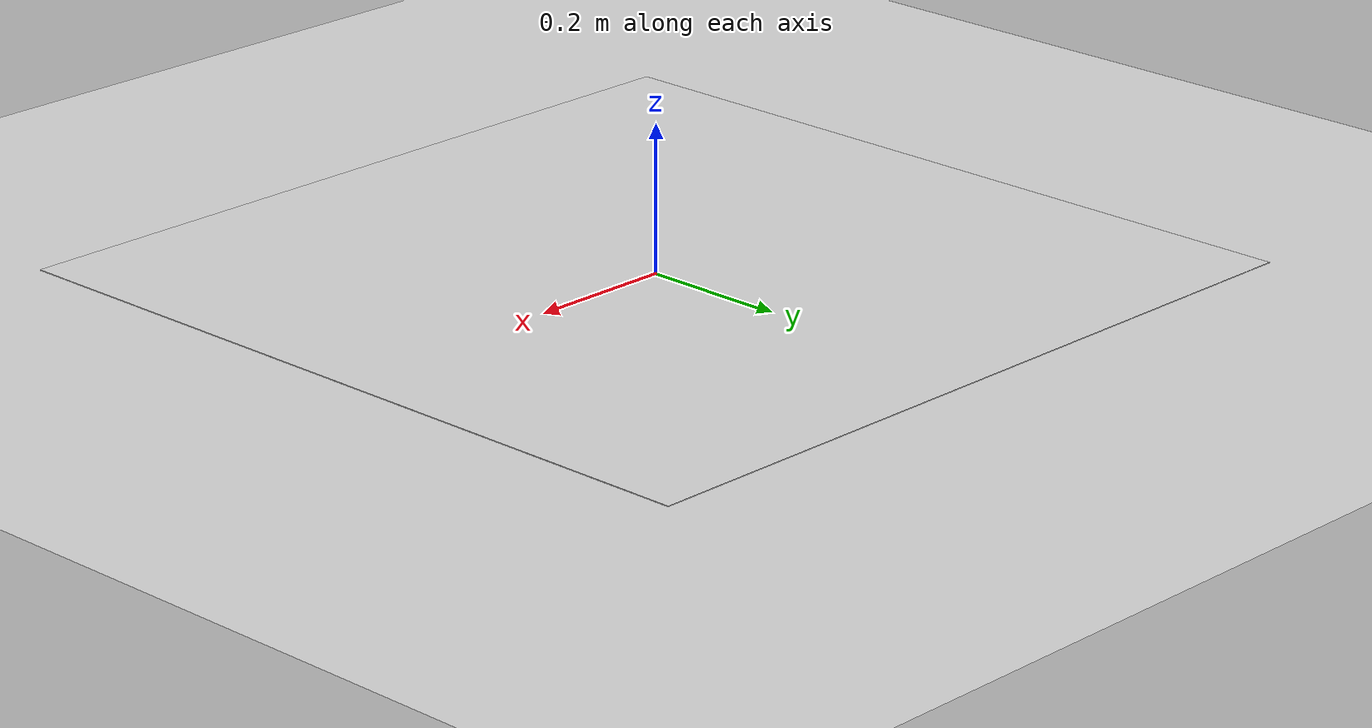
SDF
<?xml version="1.0" ?>
<sdf version="1.4">
  <world name="default">
    <include>
      <uri>model://ground_plane</uri>
    </include>
    <include>
      <uri>model://sun</uri>
    </include>

    <!-- Only one ROS interface plugin is required per world, as any other plugin can connect a Gazebo
         topic to a ROS topic (or vise versa). -->
    <plugin name="ros_interface_plugin" filename="librotors_gazebo_ros_interface_plugin.so"/>

    <spherical_coordinates>
      <surface_model>EARTH_WGS84</surface_model>
      <latitude_deg>47.3667</latitude_deg>
      <longitude_deg>8.5500</longitude_deg>
      <elevation>500.0</elevation>
      <heading_deg>0</heading_deg>
    </spherical_coordinates>
    <physics type='ode'>
      <ode>
        <solver>
          <type>quick</type>
          <iters>1000</iters>
          <sor>1.3</sor>
        </solver>
        <constraints>
          <cfm>0</cfm>
          <erp>0.2</erp>
          <contact_max_correcting_vel>100</contact_max_correcting_vel>
          <contact_surface_layer>0.001</contact_surface_layer>
        </constraints>
      </ode>
      <max_step_size>0.01</max_step_size>
      <real_time_factor>1</real_time_factor>
      <real_time_update_rate>100</real_time_update_rate>
      <gravity>0 0 -9.8</gravity>
    </physics>
    <!-- Wireless basestation (mat) model -->
    <model name="basestation">
      <static>true</static>
      <link name="mat_link">
        <pose>0 0 0.01 0 0 0</pose>
        <visual name="mat">
          <geometry>
            <plane>
              <size>1.1 1.1</size>
              <normal>0 0 1</normal>
            </plane>
          </geometry>
          <material>
            <ambient>0.8 0.8 0.8 1</ambient>
            <diffuse>0.8 0.8 0.8 1</diffuse>
            <specular>0 0 0 1</specular>
          </material>
        </visual>
      </link>

    <!-- Antenna 0 -->
      <link name="ant0_link">
        <visual name="ant_vis">
          <pose>0.5 0.5 0.01 0 0 0</pose>
          <geometry>
            <cylinder>
              <radius>.02</radius>
              <length>.001</length>
            </cylinder>
          </geometry>
          <material>
            <ambient>1 0.1 0.1 1</ambient>
            <diffuse>1 0.1 0.1 1</diffuse>
            <specular>0 0 0 1</specular>
          </material>
        </visual>
        <sensor name="wirelessTransmitter0" type="wireless_transmitter">
          <pose>0.5 0.5 0.01 0 0 0</pose>
          <always_on>1</always_on>
          <update_rate>20</update_rate>
          <visualize>true</visualize>
          <transceiver>
            <essid>TX0</essid>
            <frequency>868.7</frequency>
            <power>14.5</power>
            <gain>5</gain>
          </transceiver>
        </sensor>
      </link>
      <!-- Antenna 1 -->
      <link name="ant1_link">
        <visual name="ant_vis">
          <pose>0.5 -0.5 0.01 0 0 0</pose>
          <geometry>
            <cylinder>
              <radius>.02</radius>
              <length>.001</length>
            </cylinder>
          </geometry>
          <material>
            <ambient>0.1 1 0.1 1</ambient>
            <diffuse>0.1 1 0.1 1</diffuse>
            <specular>0 0 0 1</specular>
          </material>
        </visual>
        <sensor name="wirelessTransmitter1" type="wireless_transmitter">
          <pose>0.5 -0.5 0.01 0 0 0</pose>
          <always_on>1</always_on>
          <update_rate>20</update_rate>
          <visualize>true</visualize>
          <transceiver>
            <essid>TX1</essid>
            <frequency>868.9</frequency>
            <power>14.5</power>
            <gain>5</gain>
          </transceiver>
        </sensor>
      </link>

      <!-- Antenna 2 -->
      <link name="ant2_link">
        <visual name="ant_vis">
          <pose>-0.5 -0.5 0.01 0 0 0</pose>
          <geometry>
            <cylinder>
              <radius>.02</radius>
              <length>.001</length>
            </cylinder>
          </geometry>
          <material>
            <ambient>0.1 0.1 1 1</ambient>
            <diffuse>0.1 0.1 1 1</diffuse>
            <specular>0 0 0 1</specular>
          </material>
        </visual>
        <sensor name="wirelessTransmitter2" type="wireless_transmitter">
          <pose>-0.5 -0.5 0.01 0 0 0</pose>
          <always_on>1</always_on>
          <update_rate>20</update_rate>
          <visualize>true</visualize>
          <transceiver>
            <essid>TX2</essid>
            <frequency>869.1</frequency>
            <power>14.5</power>
            <gain>5</gain>
          </transceiver>
        </sensor>
      </link>

      <!-- Antenna 3 -->
      <link name="ant3_link">
        <visual name="ant_vis">
          <pose>-0.5 0.5 0.01 0 0 0</pose>
          <geometry>
            <cylinder>
              <radius>.02</radius>
              <length>.001</length>
            </cylinder>
          </geometry>
          <material>
            <ambient>0.1 0.1 0.1 1</ambient>
            <diffuse>0.1 0.1 0.1 1</diffuse>
            <specular>0 0 0 1</specular>
          </material>
        </visual>
        <sensor name="wirelessTransmitter3" type="wireless_transmitter">
          <pose>-0.5 0.5 0.01 0 0 0</pose>
          <always_on>1</always_on>
          <update_rate>20</update_rate>
          <visualize>true</visualize>
          <transceiver>
            <essid>TX3</essid>
            <frequency>869.3</frequency>
            <power>14.5</power>
            <gain>5</gain>
          </transceiver>
        </sensor>
      </link>

    </model>
  </world>
</sdf>
